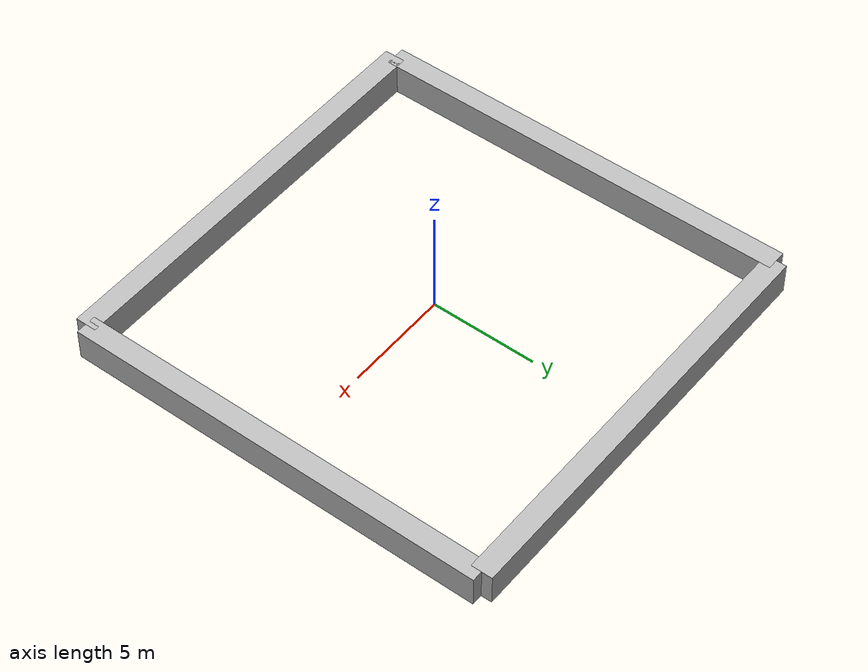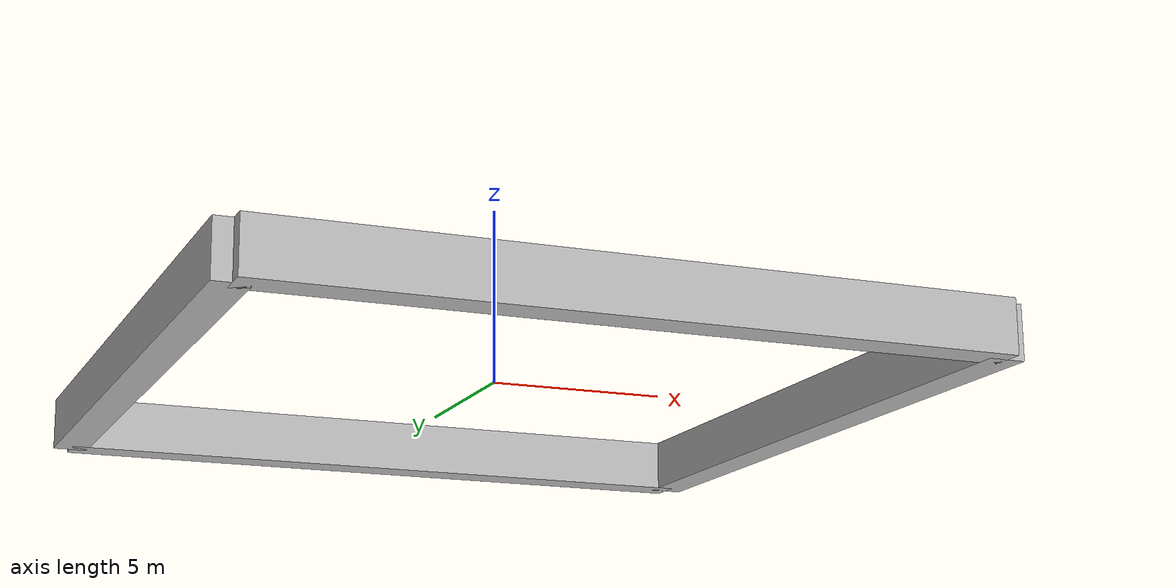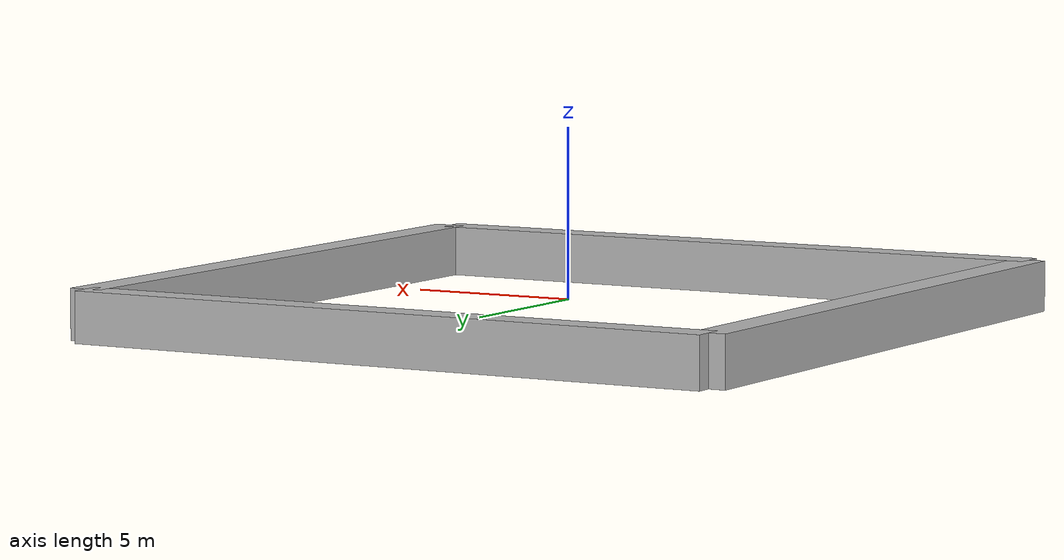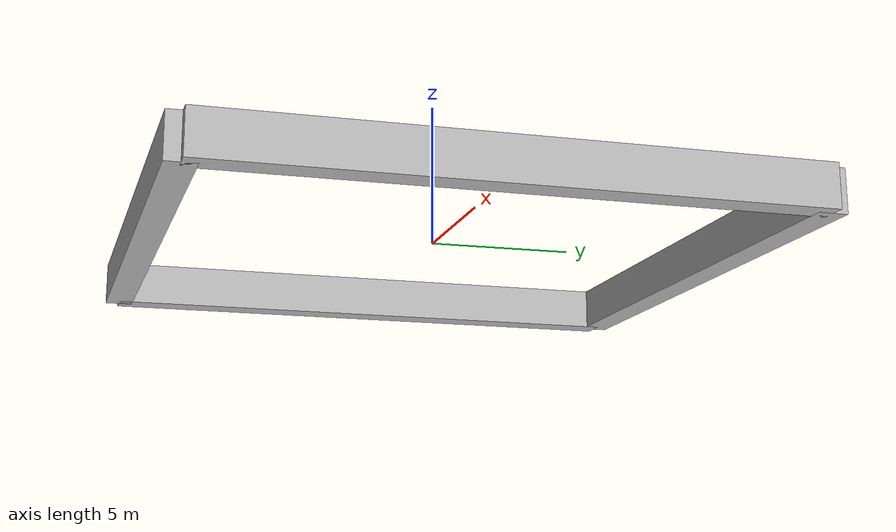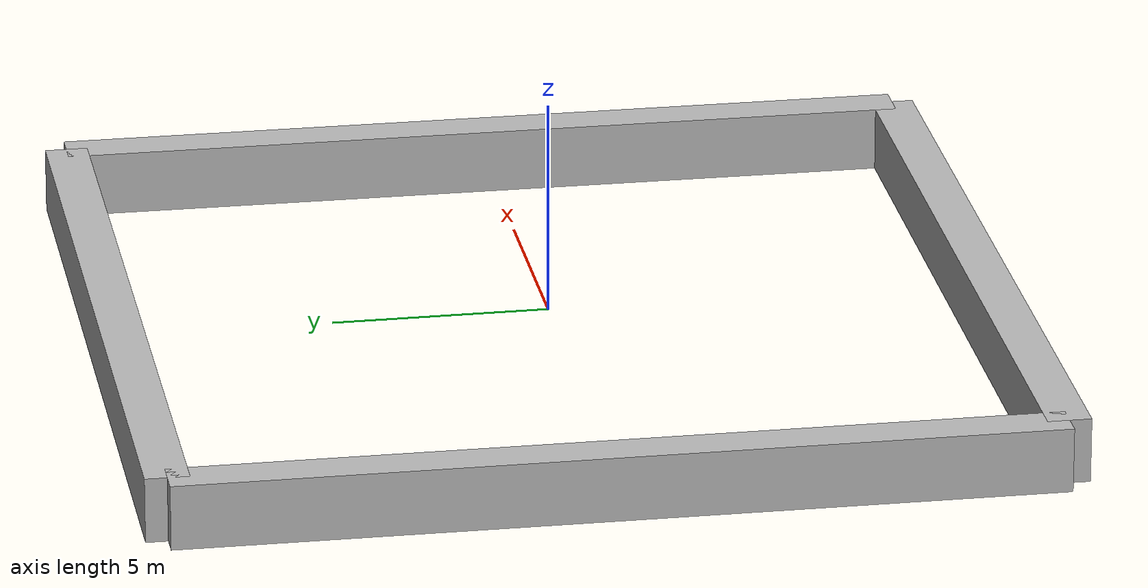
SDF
<?xml version='1.0'?>
<sdf version="1.4">
  <model name="my_model">
    <pose>0 0 0 0 0 0</pose>
    <static>true</static>
    <link name="front-wall">
      <pose>10 0 0 0 0 0</pose>
      <inertial>
        <mass>1.0</mass>
        <inertia> <!-- inertias are tricky to compute -->
          <!-- http://gazebosim.org/tutorials?tut=inertia&cat=build_robot -->
          <ixx>0.083</ixx>       <!-- for a box: ixx = 0.083 * mass * (y*y + z*z) -->
          <ixy>0.0</ixy>         <!-- for a box: ixy = 0 -->
          <ixz>0.0</ixz>         <!-- for a box: ixz = 0 -->
          <iyy>0.083</iyy>       <!-- for a box: iyy = 0.083 * mass * (x*x + z*z) -->
          <iyz>0.0</iyz>         <!-- for a box: iyz = 0 -->
          <izz>0.083</izz>       <!-- for a box: izz = 0.083 * mass * (x*x + y*y) -->
        </inertia>
      </inertial>
      <collision name="collision">
        <geometry>
          <box>
            <size>1 20 1.5</size>
          </box>
        </geometry>
      </collision>
      <visual name="visual">
        <geometry>
          <box>
            <size>1 20 1.5</size>
          </box>
        </geometry>
      </visual>
    </link>
    <link name="back-wall">
      <pose>-10 0 0 0 0 0</pose>
      <inertial>
        <mass>1.0</mass>
        <inertia> <!-- inertias are tricky to compute -->
          <!-- http://gazebosim.org/tutorials?tut=inertia&cat=build_robot -->
          <ixx>0.083</ixx>       <!-- for a box: ixx = 0.083 * mass * (y*y + z*z) -->
          <ixy>0.0</ixy>         <!-- for a box: ixy = 0 -->
          <ixz>0.0</ixz>         <!-- for a box: ixz = 0 -->
          <iyy>0.083</iyy>       <!-- for a box: iyy = 0.083 * mass * (x*x + z*z) -->
          <iyz>0.0</iyz>         <!-- for a box: iyz = 0 -->
          <izz>0.083</izz>       <!-- for a box: izz = 0.083 * mass * (x*x + y*y) -->
        </inertia>
      </inertial>
      <collision name="collision">
        <geometry>
          <box>
            <size>1 20 1.5</size>
          </box>
        </geometry>
      </collision>
      <visual name="visual">
        <geometry>
          <box>
            <size>1 20 1.5</size>
          </box>
        </geometry>
      </visual>
    </link>

    <link name="left-wall">
      <pose>0 10 0 0 0 0</pose>
      <inertial>
        <mass>1.0</mass>
        <inertia> <!-- inertias are tricky to compute -->
          <!-- http://gazebosim.org/tutorials?tut=inertia&cat=build_robot -->
          <ixx>0.083</ixx>       <!-- for a box: ixx = 0.083 * mass * (y*y + z*z) -->
          <ixy>0.0</ixy>         <!-- for a box: ixy = 0 -->
          <ixz>0.0</ixz>         <!-- for a box: ixz = 0 -->
          <iyy>0.083</iyy>       <!-- for a box: iyy = 0.083 * mass * (x*x + z*z) -->
          <iyz>0.0</iyz>         <!-- for a box: iyz = 0 -->
          <izz>0.083</izz>       <!-- for a box: izz = 0.083 * mass * (x*x + y*y) -->
        </inertia>
      </inertial>
      <collision name="collision">
        <geometry>
          <box>
            <size>20 1 1.5</size>
          </box>
        </geometry>
      </collision>
      <visual name="visual">
        <geometry>
          <box>
            <size>20 1 1.5</size>
          </box>
        </geometry>
      </visual>
    </link>

    <link name="right-wall">
      <pose>0 -10 0 0 0 0</pose>
      <inertial>
        <mass>1.0</mass>
        <inertia> <!-- inertias are tricky to compute -->
          <!-- http://gazebosim.org/tutorials?tut=inertia&cat=build_robot -->
          <ixx>0.083</ixx>       <!-- for a box: ixx = 0.083 * mass * (y*y + z*z) -->
          <ixy>0.0</ixy>         <!-- for a box: ixy = 0 -->
          <ixz>0.0</ixz>         <!-- for a box: ixz = 0 -->
          <iyy>0.083</iyy>       <!-- for a box: iyy = 0.083 * mass * (x*x + z*z) -->
          <iyz>0.0</iyz>         <!-- for a box: iyz = 0 -->
          <izz>0.083</izz>       <!-- for a box: izz = 0.083 * mass * (x*x + y*y) -->
        </inertia>
      </inertial>
      <collision name="collision">
        <geometry>
          <box>
            <size>20 1 1.5</size>
          </box>
        </geometry>
      </collision>
      <visual name="visual">
        <geometry>
          <box>
            <size>20 1 1.5</size>
          </box>
        </geometry>
      </visual>
    </link>
  </model>
</sdf>
